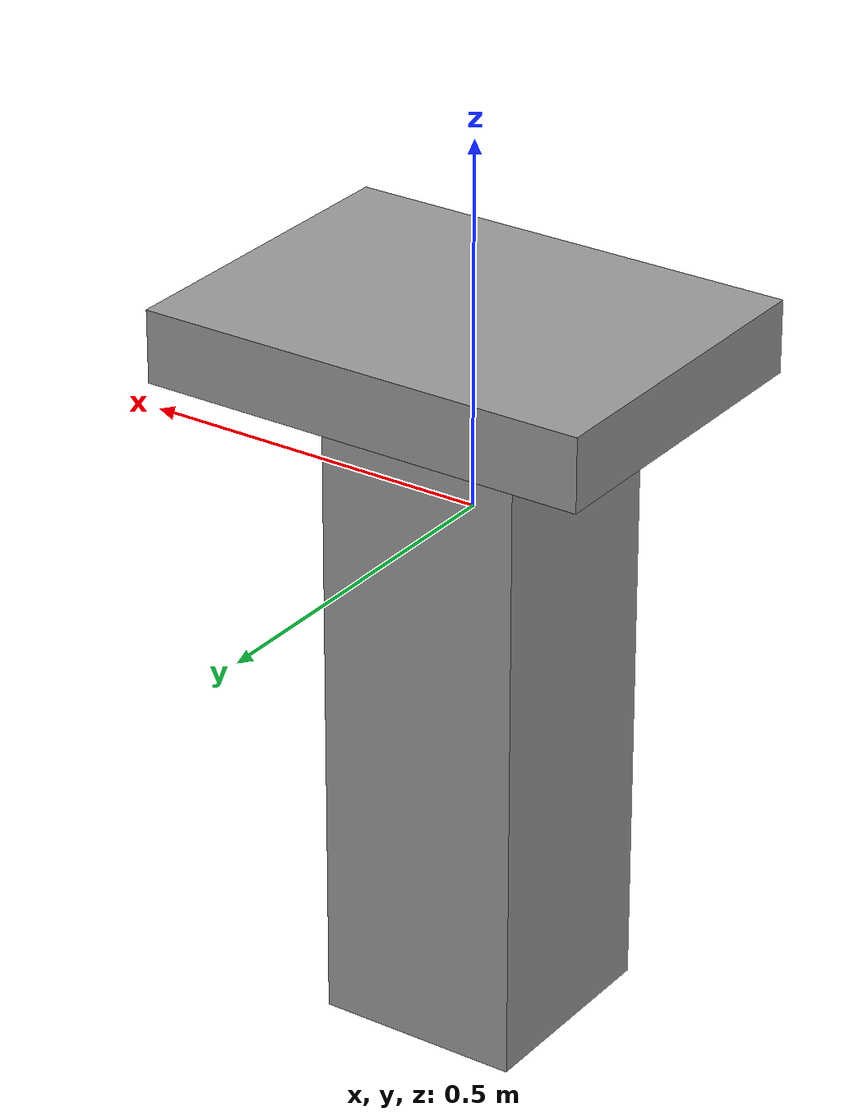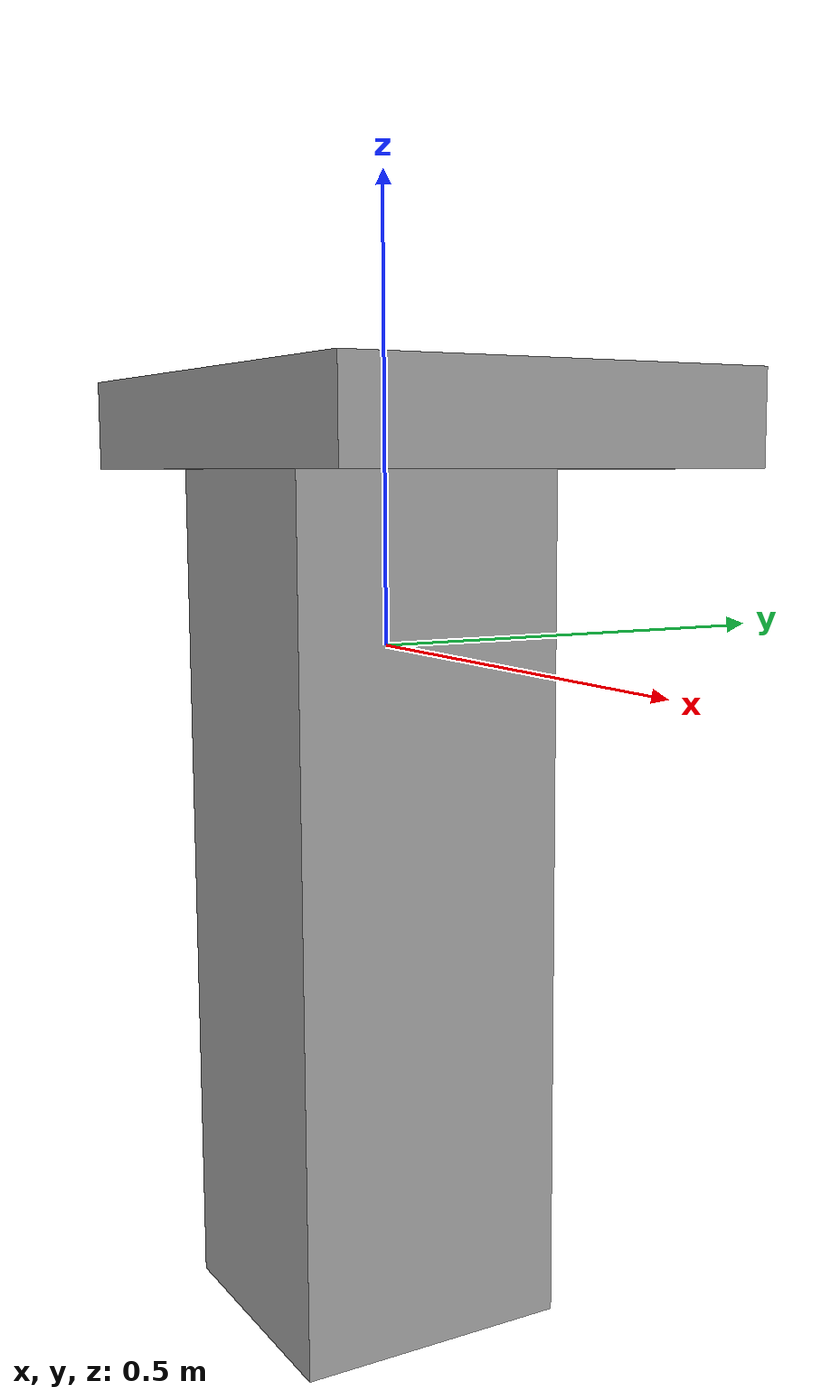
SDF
<?xml version='1.0'?>
<sdf version='1.6'>
  <model name='beerPedestal'>
    <link name='link_0'>
      <pose frame=''>-0.003228 0.024851 0.239853 0 -0 0</pose>
      <inertial>
        <mass>0.0294019</mass>
        <inertia>
          <ixx>0.000562586</ixx>
          <ixy>0</ixy>
          <ixz>0</ixz>
          <iyy>0.000997132</iyy>
          <iyz>0</iyz>
          <izz>0.00151116</izz>
        </inertia>
        <pose frame=''>0 0 0 0 -0 0</pose>
      </inertial>
      <visual name='visual'>
        <pose frame=''>0 0 0 0 -0 0</pose>
        <geometry>
          <box>
            <size>0.630125 0.46873 0.099543</size>
          </box>
        </geometry>
        <material>
          <lighting>1</lighting>
          <script>
            <uri>file://media/materials/scripts/gazebo.material</uri>
            <name>Gazebo/Grey</name>
          </script>
          <ambient>0.3 0.3 0.3 1</ambient>
          <diffuse>0.7 0.7 0.7 1</diffuse>
          <specular>0.01 0.01 0.01 1</specular>
          <emissive>0 0 0 1</emissive>
        </material>
        <cast_shadows>1</cast_shadows>
        <transparency>0</transparency>
      </visual>
      <collision name='collision'>
        <laser_retro>0</laser_retro>
        <max_contacts>10</max_contacts>
        <pose frame=''>0 0 0 0 -0 0</pose>
        <geometry>
          <box>
            <size>0.630125 0.46873 0.099543</size>
          </box>
        </geometry>
        <surface>
          <friction>
            <ode>
              <mu>1</mu>
              <mu2>1</mu2>
              <fdir1>0 0 0</fdir1>
              <slip1>0</slip1>
              <slip2>0</slip2>
            </ode>
            <torsional>
              <coefficient>1</coefficient>
              <patch_radius>0</patch_radius>
              <surface_radius>0</surface_radius>
              <use_patch_radius>1</use_patch_radius>
              <ode>
                <slip>0</slip>
              </ode>
            </torsional>
          </friction>
          <bounce>
            <restitution_coefficient>0</restitution_coefficient>
            <threshold>1e+06</threshold>
          </bounce>
          <contact>
            <collide_without_contact>0</collide_without_contact>
            <collide_without_contact_bitmask>1</collide_without_contact_bitmask>
            <collide_bitmask>1</collide_bitmask>
            <ode>
              <soft_cfm>0</soft_cfm>
              <soft_erp>0.2</soft_erp>
              <kp>1e+13</kp>
              <kd>1</kd>
              <max_vel>0.01</max_vel>
              <min_depth>0</min_depth>
            </ode>
            <bullet>
              <split_impulse>1</split_impulse>
              <split_impulse_penetration_threshold>-0.01</split_impulse_penetration_threshold>
              <soft_cfm>0</soft_cfm>
              <soft_erp>0.2</soft_erp>
              <kp>1e+13</kp>
              <kd>1</kd>
            </bullet>
          </contact>
        </surface>
      </collision>
    </link>
    <link name='link_2'>
      <pose frame=''>0.003228 -0.024855 -0.239853 0 -0 0</pose>
      <inertial>
        <mass>0.0847533</mass>
        <inertia>
          <ixx>0.0076844</ixx>
          <ixy>0</ixy>
          <ixz>0</ixz>
          <iyy>0.00763922</iyy>
          <iyz>0</iyz>
          <izz>0.00119804</izz>
        </inertia>
        <pose frame=''>0 0 0 0 -0 0</pose>
      </inertial>
      <visual name='visual'>
        <pose frame=''>0 0 0 0 -0 0</pose>
        <geometry>
          <box>
            <size>0.285689 0.296668 1</size>
          </box>
        </geometry>
        <material>
          <lighting>1</lighting>
          <script>
            <uri>file://media/materials/scripts/gazebo.material</uri>
            <name>Gazebo/Grey</name>
          </script>
          <ambient>0.3 0.3 0.3 1</ambient>
          <diffuse>0.7 0.7 0.7 1</diffuse>
          <specular>0.01 0.01 0.01 1</specular>
          <emissive>0 0 0 1</emissive>
        </material>
        <cast_shadows>1</cast_shadows>
        <transparency>0</transparency>
      </visual>
      <collision name='collision'>
        <laser_retro>0</laser_retro>
        <max_contacts>10</max_contacts>
        <pose frame=''>0 0 0 0 -0 0</pose>
        <geometry>
          <box>
            <size>0.285689 0.296668 1</size>
          </box>
        </geometry>
        <surface>
          <friction>
            <ode>
              <mu>1</mu>
              <mu2>1</mu2>
              <fdir1>0 0 0</fdir1>
              <slip1>0</slip1>
              <slip2>0</slip2>
            </ode>
            <torsional>
              <coefficient>1</coefficient>
              <patch_radius>0</patch_radius>
              <surface_radius>0</surface_radius>
              <use_patch_radius>1</use_patch_radius>
              <ode>
                <slip>0</slip>
              </ode>
            </torsional>
          </friction>
          <bounce>
            <restitution_coefficient>0</restitution_coefficient>
            <threshold>1e+06</threshold>
          </bounce>
          <contact>
            <collide_without_contact>0</collide_without_contact>
            <collide_without_contact_bitmask>1</collide_without_contact_bitmask>
            <collide_bitmask>1</collide_bitmask>
            <ode>
              <soft_cfm>0</soft_cfm>
              <soft_erp>0.2</soft_erp>
              <kp>1e+13</kp>
              <kd>1</kd>
              <max_vel>0.01</max_vel>
              <min_depth>0</min_depth>
            </ode>
            <bullet>
              <split_impulse>1</split_impulse>
              <split_impulse_penetration_threshold>-0.01</split_impulse_penetration_threshold>
              <soft_cfm>0</soft_cfm>
              <soft_erp>0.2</soft_erp>
              <kp>1e+13</kp>
              <kd>1</kd>
            </bullet>
          </contact>
        </surface>
      </collision>
    </link>
    <static>0</static>
    <allow_auto_disable>1</allow_auto_disable>
  </model>
</sdf>
